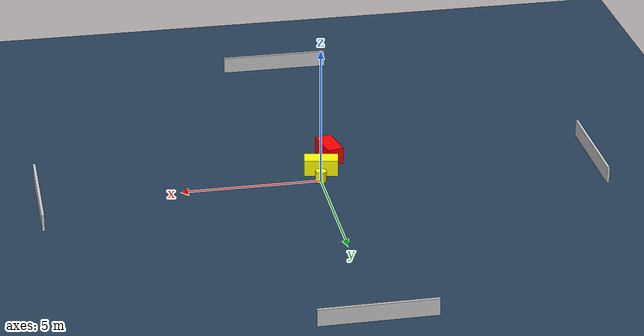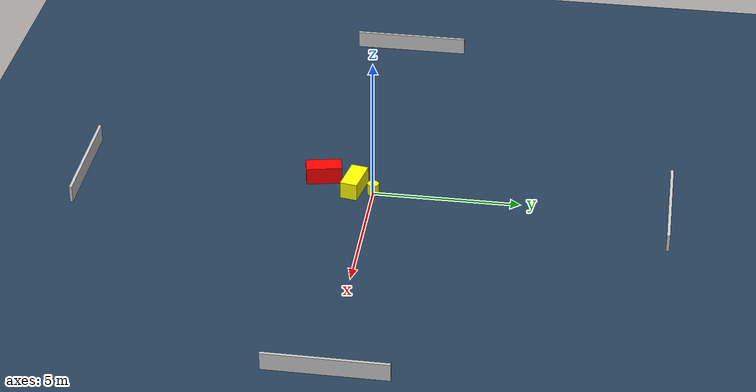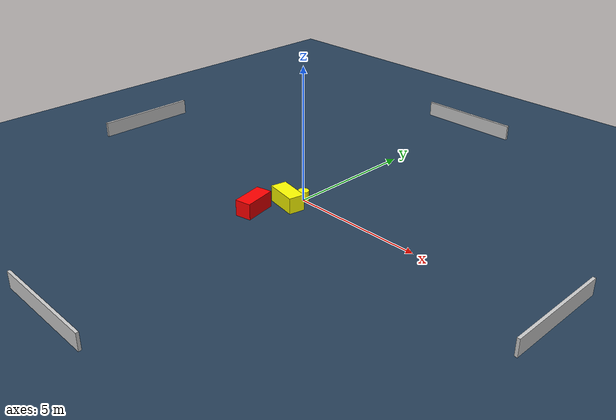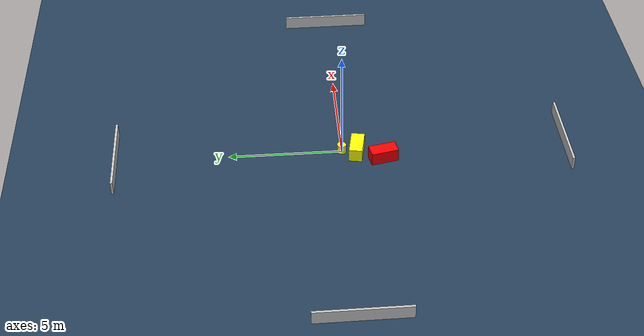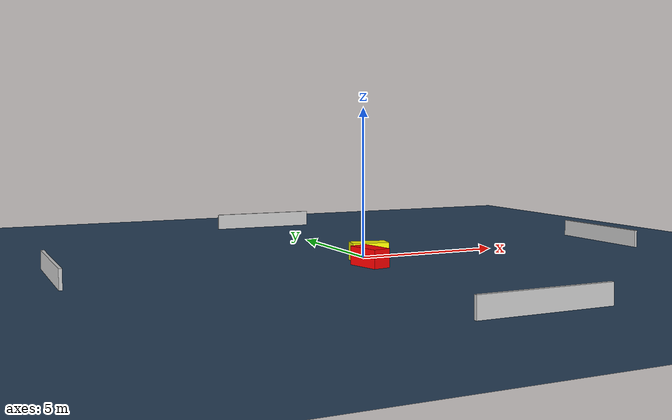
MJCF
<?xml version="1.0" ?>
<mujoco model="generated_environment">
  <option timestep="0.01" integrator="RK4" cone="elliptic"/>
  <default>
    <geom density="1"/>
  </default>
  <asset>
    <texture builtin="gradient" height="3072" name="skybox" rgb1="0.3 0.5 0.7" rgb2="0 0 0" type="skybox" width="512"/>
    <texture builtin="checker" height="300" name="groundplane" rgb1="0.2 0.3 0.4" rgb2="0.1 0.2 0.3" type="2d" width="300"/>
    <material name="groundplane" reflectance="0.2" texrepeat="5 5" texture="groundplane"/>
  </asset>
  <worldbody>
    <light dir="0 0 -1" directional="true" pos="0 0 1.5"/>
    <geom condim="3" friction="0.5 0.005 0.001" material="groundplane" name="floor" pos="0 0 0" size="0 0 0.05" type="plane"/>
    <body name="walls">
      <geom name="wall_1" condim="4" pos="-10.0 0.0 0.3" rgba="0.800000011920929 0.800000011920929 0.800000011920929 1.0" size="0.05 2.0 0.3" type="box"/>
      <geom name="wall_2" condim="4" pos="10.0 0.0 0.3" rgba="0.800000011920929 0.800000011920929 0.800000011920929 1.0" size="0.05 2.0 0.3" type="box"/>
      <geom name="wall_3" condim="4" pos="0.0 -10.0 0.3" rgba="0.800000011920929 0.800000011920929 0.800000011920929 1.0" size="2.0 0.05 0.3" type="box"/>
      <geom name="wall_4" condim="4" pos="0.0 10.0 0.3" rgba="0.800000011920929 0.800000011920929 0.800000011920929 1.0" size="2.0 0.05 0.3" type="box"/>
    </body>
    <body name="robot">
      <joint name="joint_x" type="slide" pos="0 0 0" axis="1 0 0"/>
      <joint name="joint_y" type="slide" pos="0 0 0" axis="0 1 0"/>
      <geom name="robot" type="cylinder" pos="0.0 0.0 0.2" size="0.2 0.2 0.0" mass="5.0" friction="1.0 0.005 0.0001" condim="4" rgba="1.0 1.0 0.0 1.0"/>
    </body>
    <body name="obstacle_1_movable">
      <geom name="obstacle_1_movable" condim="4" pos="-0.12415435072836564 -0.6645502858314141 0.3" euler="0 0 349.4665383240927" friction="0.0 0.005 0.001" rgba="1.0 1.0 0.0 1.0" size="0.6078003720753066 0.29700990193074084 0.3" type="box" mass="0.1"/>
      <joint type="free"/>
    </body>
    <body name="obstacle_2_static">
      <geom name="obstacle_2_static" condim="4" pos="-0.6402609770887373 -1.7960122949865165 0.3" euler="0 0 101.73247318341289" friction="0.0 0.005 0.001" rgba="1.0 0.0 0.0 1.0" size="0.6097801982693634 0.30145061046268407 0.3" type="box"/>
    </body>
  </worldbody>
  <actuator>
    <motor name="actuator_x" joint="joint_x" gear="1" ctrlrange="-1 1"/>
    <motor name="actuator_y" joint="joint_y" gear="1" ctrlrange="-1 1"/>
  </actuator>
</mujoco>
